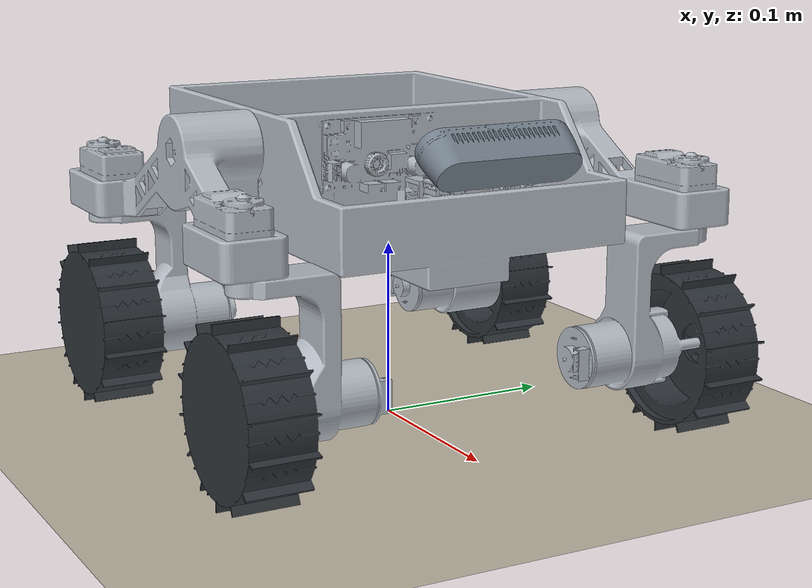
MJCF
<?xml version='1.0' encoding='utf-8'?>
<mujoco model="rover_measured">
  <compiler angle="radian" meshdir="../meshes" autolimits="true" inertiafromgeom="false" />
  <option timestep="0.002" gravity="0 0 -9.81" integrator="implicitfast" solver="Newton" iterations="100" />
  <visual />
  <default>
    <geom friction="1.0 0.005 0.0001" solref="0.01 1" solimp="0.95 0.99 0.001" />
  </default>
  <asset>
    <mesh name="base_link_mesh" file="base_link_sim.stl" />
    <mesh name="left_rocker_link_mesh" file="left_rocker_link.stl" />
    <mesh name="right_rocker_link_mesh" file="right_rocker_link.stl" />
    <mesh name="fl_steering_link_mesh" file="fl_steering_link.stl" />
    <mesh name="fl_wheel_link_mesh" file="fl_wheel_link.stl" />
    <mesh name="fr_steering_link_mesh" file="fr_steering_link.stl" />
    <mesh name="fr_wheel_link_mesh" file="fr_wheel_link.stl" />
    <mesh name="rl_steering_link_mesh" file="rl_steering_link.stl" />
    <mesh name="rl_wheel_link_mesh" file="rl_wheel_link.stl" />
    <mesh name="rr_steering_link_mesh" file="rr_steering_link.stl" />
    <mesh name="rr_wheel_link_mesh" file="rr_wheel_link.stl" />
    <mesh name="camera_link_mesh" file="camera_link.stl" />
    <mesh name="imu_link_mesh" file="imu_link.stl" />
  </asset>
  <worldbody>
    <light pos="0 -1 2" dir="0 0 -1" />
    <geom name="ground" type="plane" size="5 5 .1" rgba=".75 .72 .65 1" contype="1" conaffinity="2" />
    <body name="base_link" pos="0 0 0.161813">
      <freejoint name="floating_base" />
      <body name="left_rocker_link" pos="-5.22457895888e-19 0.085 0" quat="1 0 0 0">
        <joint name="left_rocker_joint" type="hinge" axis="0 1 0" damping="0.01" range="-0.523598775598 0.523598775598" />
        <body name="fl_steering_link" pos="0.10243139267 0.0475 -0.045313243866" quat="1 0 0 0">
          <joint name="fl_steering_joint" type="hinge" axis="0 0 1" damping="0.01" range="-1.57079632679 1.57079632679" />
          <body name="fl_wheel_link" pos="0 0.00953000068665 -0.0689999961853" quat="0.707106781187 -0.707106781187 0 0">
            <joint name="fl_wheel_joint" type="hinge" axis="0 0 1" damping="0.001" />
            <inertial mass="0.0471" pos="1.35343650632e-08 1.1917175737e-08 -0.00459089788381" fullinertia="3.19944436105e-05 3.19944370398e-05 5.54521855023e-05 2.35869009595e-12 1.15589879793e-11 3.18645968056e-12" />
            <geom name="fl_wheel_link_visual" type="mesh" mesh="fl_wheel_link_mesh" rgba="0.18 0.2 0.22 1" contype="0" conaffinity="0" group="2" />
            <geom name="fl_wheel_link_collision_0" type="cylinder" pos="0 0 -0.00953124761581" contype="2" conaffinity="1" rgba=".3 .5 .8 .2" group="3" size="0.047503017451 0.01859375" />
          </body>
          <inertial mass="0.2248" pos="-0.00670056574896 -0.0384631897972 -0.0654837671094" fullinertia="0.0001226757368 7.72455197191e-05 8.33426742573e-05 1.57566077196e-08 -5.3372430729e-06 -8.33157421512e-06" />
          <geom name="fl_steering_link_visual" type="mesh" mesh="fl_steering_link_mesh" rgba="0.7 0.73 0.76 1" contype="0" conaffinity="0" group="2" />
          <geom name="fl_steering_link_collision_0" type="box" pos="-0.00699947595596 -0.0172594672441 -0.0451248784428" contype="2" conaffinity="1" rgba=".3 .5 .8 .2" group="3" size="0.0212495183945 0.0272105282545 0.0451248753071" />
          <geom name="fl_steering_link_collision_1" type="box" pos="-0.00700000047684 -0.0336200046539 -0.0690000034933" contype="2" conaffinity="1" rgba=".3 .5 .8 .2" group="3" size="0.0185000014305 0.0431500005722 0.0184999996424" />
        </body>
        <body name="rl_steering_link" pos="-0.10243139267 0.0475 -0.045313243866" quat="1 0 0 0">
          <joint name="rl_steering_joint" type="hinge" axis="0 0 1" damping="0.01" range="-1.57079632679 1.57079632679" />
          <body name="rl_wheel_link" pos="0 0.00953000068665 -0.0689999961853" quat="0.707106781187 -0.707106781187 0 0">
            <joint name="rl_wheel_joint" type="hinge" axis="0 0 1" damping="0.001" />
            <inertial mass="0.0471" pos="1.35343650632e-08 1.1917175737e-08 -0.00459089788381" fullinertia="3.19944436105e-05 3.19944370398e-05 5.54521855023e-05 2.35869009595e-12 1.15589879793e-11 3.18645968056e-12" />
            <geom name="rl_wheel_link_visual" type="mesh" mesh="rl_wheel_link_mesh" rgba="0.18 0.2 0.22 1" contype="0" conaffinity="0" group="2" />
            <geom name="rl_wheel_link_collision_0" type="cylinder" pos="0 0 -0.00953124761581" contype="2" conaffinity="1" rgba=".3 .5 .8 .2" group="3" size="0.047503017451 0.01859375" />
          </body>
          <inertial mass="0.2248" pos="0.0067005643948 -0.0384631918851 -0.0654836128865" fullinertia="0.000122675635391 7.72454316174e-05 8.3342682896e-05 -1.57549243504e-08 5.33696637792e-06 -8.33056406036e-06" />
          <geom name="rl_steering_link_visual" type="mesh" mesh="rl_steering_link_mesh" rgba="0.7 0.73 0.76 1" contype="0" conaffinity="0" group="2" />
          <geom name="rl_steering_link_collision_0" type="box" pos="0.00699948072433 -0.0172594672441 -0.0451248784428" contype="2" conaffinity="1" rgba=".3 .5 .8 .2" group="3" size="0.0212495136261 0.0272105282545 0.0451248753071" />
          <geom name="rl_steering_link_collision_1" type="box" pos="0.00700000047684 -0.0336200046539 -0.0690000058775" contype="2" conaffinity="1" rgba=".3 .5 .8 .2" group="3" size="0.0185000014305 0.0431500005722 0.0184999996424" />
        </body>
        <inertial mass="0.1862" pos="-1.96512358754e-06 0.0404127009788 -0.0221390723934" fullinertia="8.66666054512e-05 0.00119831015184 0.00120679506749 3.27131653456e-09 -1.60179812582e-09 2.48078972061e-05" />
        <geom name="left_rocker_link_visual" type="mesh" mesh="left_rocker_link_mesh" rgba="0.7 0.73 0.76 1" contype="0" conaffinity="0" group="2" />
        <geom name="left_rocker_link_collision_0" type="box" pos="0 0.0275 -0.0124653096561" contype="2" conaffinity="1" rgba=".3 .5 .8 .2" group="3" size="0.117931394577 0.0375 0.0323552072048" />
        <geom name="left_rocker_link_collision_1" type="box" pos="-0.0899313926697 0.0475 -0.0264439971809" contype="2" conaffinity="1" rgba=".3 .5 .8 .2" group="3" size="0.0226117038727 0.0123617041111 0.0212157464027" />
        <geom name="left_rocker_link_collision_2" type="box" pos="0.0899313926697 0.0475 -0.0264439971809" contype="2" conaffinity="1" rgba=".3 .5 .8 .2" group="3" size="0.0226117038727 0.0123617041111 0.0212157464027" />
      </body>
      <body name="right_rocker_link" pos="-5.22457895888e-19 -0.085 0" quat="1 0 0 0">
        <joint name="right_rocker_joint" type="hinge" axis="0 1 0" damping="0.01" range="-0.523598775598 0.523598775598" />
        <body name="fr_steering_link" pos="0.10243139267 -0.0475 -0.045313243866" quat="1 0 0 0">
          <joint name="fr_steering_joint" type="hinge" axis="0 0 1" damping="0.01" range="-1.57079632679 1.57079632679" />
          <body name="fr_wheel_link" pos="0 -0.00953000068665 -0.0689999961853" quat="0.707106781187 -0.707106781187 0 0">
            <joint name="fr_wheel_joint" type="hinge" axis="0 0 1" damping="0.001" />
            <inertial mass="0.0471" pos="-1.35343650632e-08 1.1917175737e-08 0.00459089788381" fullinertia="3.19944436105e-05 3.19944370398e-05 5.54521855023e-05 -2.35869009595e-12 1.15589879793e-11 -3.18645968056e-12" />
            <geom name="fr_wheel_link_visual" type="mesh" mesh="fr_wheel_link_mesh" rgba="0.18 0.2 0.22 1" contype="0" conaffinity="0" group="2" />
            <geom name="fr_wheel_link_collision_0" type="cylinder" pos="0 0 0.00953124761581" contype="2" conaffinity="1" rgba=".3 .5 .8 .2" group="3" size="0.047503017451 0.01859375" />
          </body>
          <inertial mass="0.2248" pos="-0.0067005643948 0.0384631918851 -0.0654836128865" fullinertia="0.000122675635391 7.72454316174e-05 8.3342682896e-05 -1.57549243504e-08 -5.33696637792e-06 8.33056406036e-06" />
          <geom name="fr_steering_link_visual" type="mesh" mesh="fr_steering_link_mesh" rgba="0.7 0.73 0.76 1" contype="0" conaffinity="0" group="2" />
          <geom name="fr_steering_link_collision_0" type="box" pos="-0.00699948072433 0.0172594672441 -0.0451248784428" contype="2" conaffinity="1" rgba=".3 .5 .8 .2" group="3" size="0.0212495136261 0.0272105282545 0.0451248753071" />
          <geom name="fr_steering_link_collision_1" type="box" pos="-0.00700000047684 0.0336200046539 -0.0690000058775" contype="2" conaffinity="1" rgba=".3 .5 .8 .2" group="3" size="0.0185000014305 0.0431500005722 0.0184999996424" />
        </body>
        <body name="rr_steering_link" pos="-0.10243139267 -0.0475 -0.045313243866" quat="1 0 0 0">
          <joint name="rr_steering_joint" type="hinge" axis="0 0 1" damping="0.01" range="-1.57079632679 1.57079632679" />
          <body name="rr_wheel_link" pos="0 -0.00953000068665 -0.0689999961853" quat="0.707106781187 -0.707106781187 0 0">
            <joint name="rr_wheel_joint" type="hinge" axis="0 0 1" damping="0.001" />
            <inertial mass="0.0471" pos="-1.35343650632e-08 1.1917175737e-08 0.00459089788381" fullinertia="3.19944436105e-05 3.19944370398e-05 5.54521855023e-05 -2.35869009595e-12 1.15589879793e-11 -3.18645968056e-12" />
            <geom name="rr_wheel_link_visual" type="mesh" mesh="rr_wheel_link_mesh" rgba="0.18 0.2 0.22 1" contype="0" conaffinity="0" group="2" />
            <geom name="rr_wheel_link_collision_0" type="cylinder" pos="0 0 0.00953124761581" contype="2" conaffinity="1" rgba=".3 .5 .8 .2" group="3" size="0.047503017451 0.01859375" />
          </body>
          <inertial mass="0.2248" pos="0.00670056574896 0.0384631897972 -0.0654837671094" fullinertia="0.0001226757368 7.72455197191e-05 8.33426742573e-05 1.57566077196e-08 5.33724307291e-06 8.33157421512e-06" />
          <geom name="rr_steering_link_visual" type="mesh" mesh="rr_steering_link_mesh" rgba="0.7 0.73 0.76 1" contype="0" conaffinity="0" group="2" />
          <geom name="rr_steering_link_collision_0" type="box" pos="0.00699947595596 0.0172594672441 -0.0451248784428" contype="2" conaffinity="1" rgba=".3 .5 .8 .2" group="3" size="0.0212495183945 0.0272105282545 0.0451248753071" />
          <geom name="rr_steering_link_collision_1" type="box" pos="0.00700000047684 0.0336200046539 -0.0690000034933" contype="2" conaffinity="1" rgba=".3 .5 .8 .2" group="3" size="0.0185000014305 0.0431500005722 0.0184999996424" />
        </body>
        <inertial mass="0.1862" pos="1.94316414914e-06 -0.0404283017018 -0.0220823770754" fullinertia="8.65008989919e-05 0.00119654837992 0.00120468351593 3.29521144284e-09 1.6044542867e-09 -2.47197004467e-05" />
        <geom name="right_rocker_link_visual" type="mesh" mesh="right_rocker_link_mesh" rgba="0.7 0.73 0.76 1" contype="0" conaffinity="0" group="2" />
        <geom name="right_rocker_link_collision_0" type="box" pos="0 -0.0275 -0.0124653096561" contype="2" conaffinity="1" rgba=".3 .5 .8 .2" group="3" size="0.117931394577 0.0375 0.0323552072048" />
        <geom name="right_rocker_link_collision_1" type="box" pos="-0.0899313926697 -0.0475 -0.0264439971809" contype="2" conaffinity="1" rgba=".3 .5 .8 .2" group="3" size="0.0226117038727 0.0123617041111 0.0212157464027" />
        <geom name="right_rocker_link_collision_2" type="box" pos="0.0899313926697 -0.0475 -0.0264439971809" contype="2" conaffinity="1" rgba=".3 .5 .8 .2" group="3" size="0.0226117038727 0.0123617041111 0.0212157464027" />
      </body>
      <body name="camera_link" pos="0.116619 0 -0.004122" quat="0.953716950748 0 0.300705799504 0">
        <body name="camera_depth_frame" pos="-0.0043 0.025 0" quat="1 0 0 0">
          <body name="camera_depth_optical_frame" pos="0 0 0" quat="0.5 -0.5 0.5 -0.5" />
        </body>
        <body name="camera_infra1_frame" pos="-0.0043 0.025 0" quat="1 0 0 0">
          <body name="camera_infra1_optical_frame" pos="0 0 0" quat="0.5 -0.5 0.5 -0.5">
            <camera name="camera_infra1" pos="0 0 0" quat="0 1 0 0" fovy="58" />
          </body>
        </body>
        <body name="camera_infra2_frame" pos="-0.0043 -0.025 0" quat="1 0 0 0">
          <body name="camera_infra2_optical_frame" pos="0 0 0" quat="0.5 -0.5 0.5 -0.5">
            <camera name="camera_infra2" pos="0 0 0" quat="0 1 0 0" fovy="58" />
          </body>
        </body>
        <body name="camera_stereo_center_frame" pos="-0.0043 0 0" quat="1 0 0 0">
          <body name="camera_stereo_center_optical_frame" pos="0 0 0" quat="0.5 -0.5 0.5 -0.5" />
        </body>
        <inertial mass="0.072" pos="-0.0128694249701 0.00749993845949 -0.000111432996229" fullinertia="4.51419021344e-05 6.75347231905e-06 4.552680228e-05 6.82763116644e-11 2.83927023944e-08 -4.60467569402e-11" />
        <geom name="camera_link_visual" type="mesh" mesh="camera_link_mesh" rgba="0.45 0.5 0.55 1" contype="0" conaffinity="0" group="2" />
        <geom name="camera_link_collision_0" type="box" pos="-0.0125 0.0075000038147 2.88486480708e-07" contype="2" conaffinity="1" rgba=".3 .5 .8 .2" group="3" size="0.0125 0.0449999961853 0.012500351429" />
      </body>
      <body name="imu_link" pos="0 0 -0.0246" quat="0.707106781187 0 0 -0.707106781187">
        <body name="imu_sensor_frame" pos="0 0 0" quat="1 0 0 0">
          <site name="imu_site" pos="0 0 0" size=".001" rgba="1 0 0 1" />
        </body>
        <inertial mass="0.0024" pos="-0.006458225547 0.0101999383282 0.00111494988099" fullinertia="1.36603078526e-07 5.61002794848e-08 1.88587622299e-07 1.50712337022e-10 5.50310477148e-12 -1.14889063875e-10" />
        <geom name="imu_link_visual" type="mesh" mesh="imu_link_mesh" rgba="0.45 0.5 0.55 1" contype="0" conaffinity="0" group="2" />
        <geom name="imu_link_collision_0" type="box" pos="-0.00634999990463 0.0101600003242 0.00236750006676" contype="2" conaffinity="1" rgba=".3 .5 .8 .2" group="3" size="0.00888999986649 0.0127000002861 0.00236750006676" />
      </body>
      <inertial mass="0.7918999999999999" pos="0.00644967329592 0.000243242209539 -0.0339474125033" fullinertia="0.00190943161553 0.00321018044161 0.00452838207579 -1.98819430021e-05 9.94823399427e-05 1.49596539567e-05" />
      <geom name="base_link_visual" type="mesh" mesh="base_link_mesh" rgba="0.7 0.73 0.76 1" contype="0" conaffinity="0" group="2" />
      <geom name="base_link_collision_0" type="box" pos="-0.005 0 -0.0239999997616" contype="2" conaffinity="1" rgba=".3 .5 .8 .2" group="3" size="0.115 0.085 0.0439999997616" />
      <geom name="base_link_collision_1" type="box" pos="0.0244377458561 -0.0148750001192 -0.048800002492" contype="2" conaffinity="1" rgba=".3 .5 .8 .2" group="3" size="0.0566122568119 0.0315749996901 0.0142000001669" />
      <geom name="base_link_collision_2" type="box" pos="-0.00773000001907 0.0541699981689 -0.0322500003939" contype="2" conaffinity="1" rgba=".3 .5 .8 .2" group="3" size="0.0241300010681 0.0208299994469 0.00574999988079" />
      <geom name="base_link_collision_3" type="box" pos="-0.0509100008011 0.0541699981689 -0.0187499965792" contype="2" conaffinity="1" rgba=".3 .5 .8 .2" group="3" size="0.0241300010681 0.0208299994469 0.00574999988079" />
      <geom name="base_link_collision_4" type="box" pos="0.0734050011635 0.0276300001144 -0.0281510843401" contype="2" conaffinity="1" rgba=".3 .5 .8 .2" group="3" size="0.0285949993134 0.0445199990273 0.016893710494" />
      <geom name="base_link_collision_5" type="box" pos="-0.026859998703 -0.0375 -0.0300000004272" contype="2" conaffinity="1" rgba=".3 .5 .8 .2" group="3" size="0.04125 0.035 0.01" />
      <geom name="base_link_collision_6" type="box" pos="-0.0215899991989 -0.0447100019455 -0.0257500042086" contype="2" conaffinity="1" rgba=".3 .5 .8 .2" group="3" size="0.0241300010681 0.0208299994469 0.00574999988079" />
      <geom name="base_link_collision_7" type="box" pos="0.0425490000844 -0.0263399982452 -0.00244000271606" contype="2" conaffinity="1" rgba=".3 .5 .8 .2" group="3" size="0.00792499989271 0.033654999733 0.0194309997559" />
    </body>
  </worldbody>
  <equality>
    <joint name="rocker_differential" joint1="right_rocker_joint" joint2="left_rocker_joint" polycoef="0 -1 0 0 0" solref="0.002 1" />
  </equality>
  <actuator>
    <position name="fl_steering_joint_actuator" joint="fl_steering_joint" kp="10" kv=".3" ctrlrange="-1.57079632679 1.57079632679" forcerange="-2.942 2.942" />
    <velocity name="fl_wheel_joint_actuator" joint="fl_wheel_joint" kv=".2" ctrlrange="-8 8" forcerange="-1 1" />
    <position name="fr_steering_joint_actuator" joint="fr_steering_joint" kp="10" kv=".3" ctrlrange="-1.57079632679 1.57079632679" forcerange="-2.942 2.942" />
    <velocity name="fr_wheel_joint_actuator" joint="fr_wheel_joint" kv=".2" ctrlrange="-8 8" forcerange="-1 1" />
    <position name="rl_steering_joint_actuator" joint="rl_steering_joint" kp="10" kv=".3" ctrlrange="-1.57079632679 1.57079632679" forcerange="-2.942 2.942" />
    <velocity name="rl_wheel_joint_actuator" joint="rl_wheel_joint" kv=".2" ctrlrange="-8 8" forcerange="-1 1" />
    <position name="rr_steering_joint_actuator" joint="rr_steering_joint" kp="10" kv=".3" ctrlrange="-1.57079632679 1.57079632679" forcerange="-2.942 2.942" />
    <velocity name="rr_wheel_joint_actuator" joint="rr_wheel_joint" kv=".2" ctrlrange="-8 8" forcerange="-1 1" />
  </actuator>
  <sensor>
    <accelerometer name="imu_accelerometer" site="imu_site" />
    <gyro name="imu_gyro" site="imu_site" />
    <framequat name="base_orientation" objtype="body" objname="base_link" />
  </sensor>
</mujoco>
